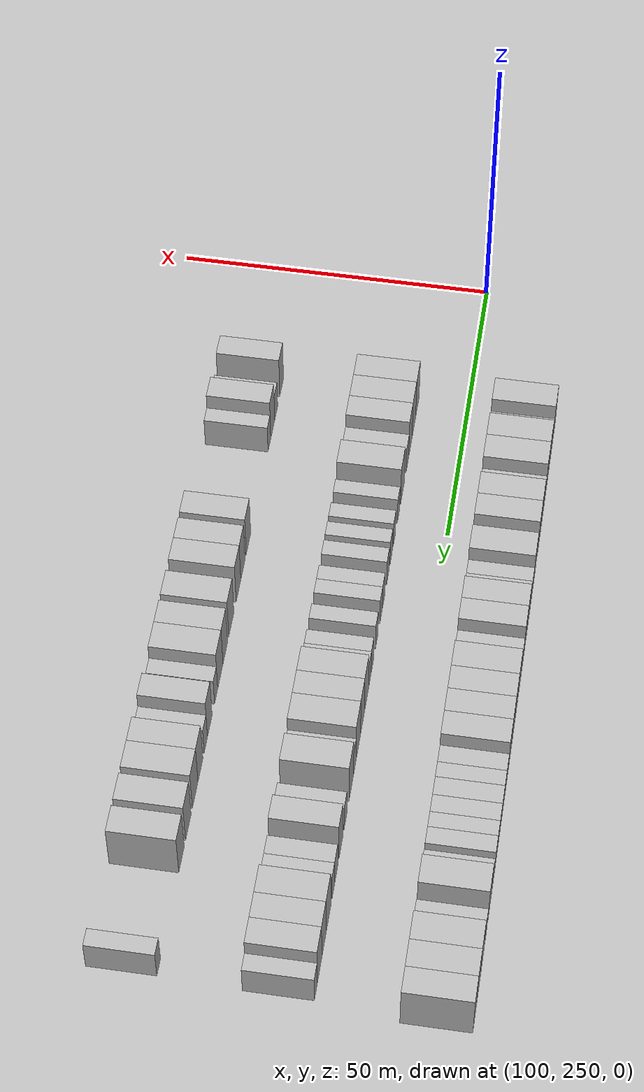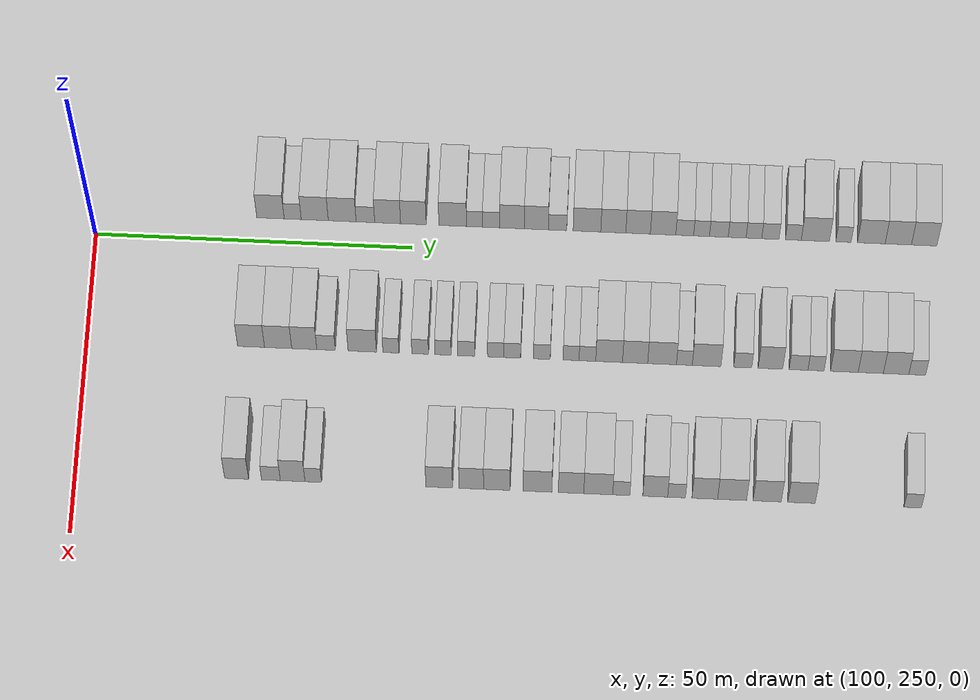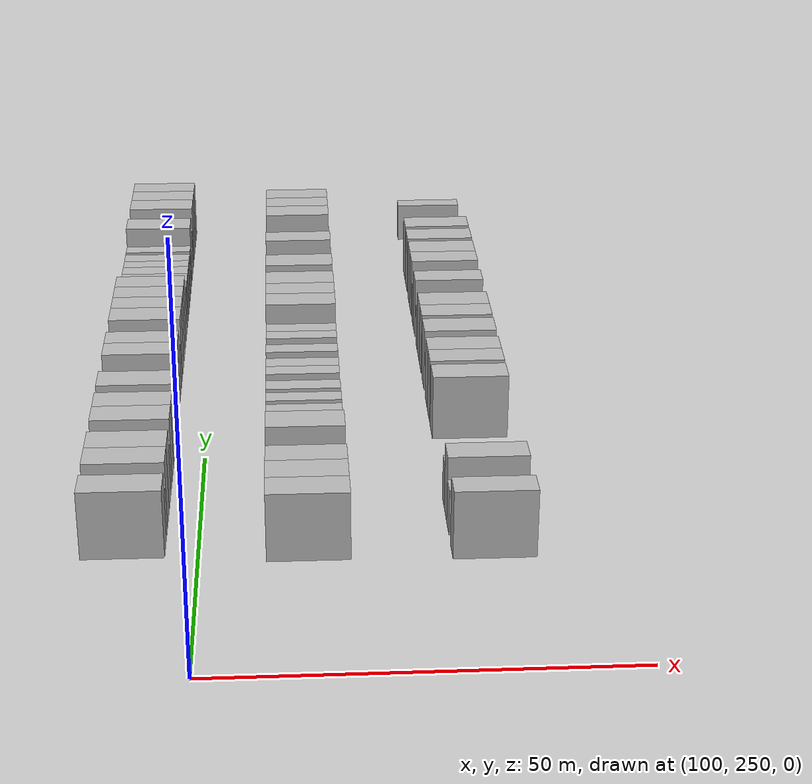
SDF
<sdf version="1.6">
 <world name="default">
  <model name="building_727">
   <static>1</static>
   <pose>91.0000 277.3168 0 0.000000 0.000000 0.000000</pose>
   <link name="link">
    <pose>0 0 4.50 0 0 0</pose>
    <collision name="collision"><geometry><box><size>10.0000 4.3286 9.0000</size></box></geometry></collision>
    <visual name="visual">
     <cast_shadows>0</cast_shadows>
     <geometry><box><size>10.0000 4.3286 9.0000</size></box></geometry>
     <material>
      <script>
       <uri>model://HANNAS_wall/materials/scripts</uri>
       <uri>model://HANNAS_wall/materials/textures</uri>
       <name>vrc/HANNAS_wall</name>
      </script>
     </material>
    </visual>
   </link>
  </model>
  <model name="building_728">
   <static>1</static>
   <pose>91.0000 280.8284 0 0.000000 0.000000 0.000000</pose>
   <link name="link">
    <pose>0 0 3.00 0 0 0</pose>
    <collision name="collision"><geometry><box><size>10.0000 2.6946 6.0000</size></box></geometry></collision>
    <visual name="visual">
     <cast_shadows>0</cast_shadows>
     <geometry><box><size>10.0000 2.6946 6.0000</size></box></geometry>
     <material>
      <script>
       <uri>model://HANNAS_wall/materials/scripts</uri>
       <uri>model://HANNAS_wall/materials/textures</uri>
       <name>vrc/HANNAS_wall</name>
      </script>
     </material>
    </visual>
   </link>
  </model>
  <model name="building_729">
   <static>1</static>
   <pose>91.0000 284.3201 0 0.000000 0.000000 0.000000</pose>
   <link name="link">
    <pose>0 0 4.50 0 0 0</pose>
    <collision name="collision"><geometry><box><size>10.0000 4.2889 9.0000</size></box></geometry></collision>
    <visual name="visual">
     <cast_shadows>0</cast_shadows>
     <geometry><box><size>10.0000 4.2889 9.0000</size></box></geometry>
     <material>
      <script>
       <uri>model://HANNAS_wall/materials/scripts</uri>
       <uri>model://HANNAS_wall/materials/textures</uri>
       <name>vrc/HANNAS_wall</name>
      </script>
     </material>
    </visual>
   </link>
  </model>
  <model name="building_730">
   <static>1</static>
   <pose>91.0000 288.6674 0 0.000000 0.000000 0.000000</pose>
   <link name="link">
    <pose>0 0 4.50 0 0 0</pose>
    <collision name="collision"><geometry><box><size>10.0000 4.4056 9.0000</size></box></geometry></collision>
    <visual name="visual">
     <cast_shadows>0</cast_shadows>
     <geometry><box><size>10.0000 4.4056 9.0000</size></box></geometry>
     <material>
      <script>
       <uri>model://HANNAS_wall/materials/scripts</uri>
       <uri>model://HANNAS_wall/materials/textures</uri>
       <name>vrc/HANNAS_wall</name>
      </script>
     </material>
    </visual>
   </link>
  </model>
  <model name="building_731">
   <static>1</static>
   <pose>91.0000 292.3396 0 0.000000 0.000000 0.000000</pose>
   <link name="link">
    <pose>0 0 3.00 0 0 0</pose>
    <collision name="collision"><geometry><box><size>10.0000 2.9389 6.0000</size></box></geometry></collision>
    <visual name="visual">
     <cast_shadows>0</cast_shadows>
     <geometry><box><size>10.0000 2.9389 6.0000</size></box></geometry>
     <material>
      <script>
       <uri>model://HANNAS_wall/materials/scripts</uri>
       <uri>model://HANNAS_wall/materials/textures</uri>
       <name>vrc/HANNAS_wall</name>
      </script>
     </material>
    </visual>
   </link>
  </model>
  <model name="building_732">
   <static>1</static>
   <pose>91.0000 295.8564 0 0.000000 0.000000 0.000000</pose>
   <link name="link">
    <pose>0 0 4.50 0 0 0</pose>
    <collision name="collision"><geometry><box><size>10.0000 4.0948 9.0000</size></box></geometry></collision>
    <visual name="visual">
     <cast_shadows>0</cast_shadows>
     <geometry><box><size>10.0000 4.0948 9.0000</size></box></geometry>
     <material>
      <script>
       <uri>model://HANNAS_wall/materials/scripts</uri>
       <uri>model://HANNAS_wall/materials/textures</uri>
       <name>vrc/HANNAS_wall</name>
      </script>
     </material>
    </visual>
   </link>
  </model>
  <model name="building_733">
   <static>1</static>
   <pose>91.0000 299.9325 0 0.000000 0.000000 0.000000</pose>
   <link name="link">
    <pose>0 0 4.50 0 0 0</pose>
    <collision name="collision"><geometry><box><size>10.0000 4.0573 9.0000</size></box></geometry></collision>
    <visual name="visual">
     <cast_shadows>0</cast_shadows>
     <geometry><box><size>10.0000 4.0573 9.0000</size></box></geometry>
     <material>
      <script>
       <uri>model://HANNAS_wall/materials/scripts</uri>
       <uri>model://HANNAS_wall/materials/textures</uri>
       <name>vrc/HANNAS_wall</name>
      </script>
     </material>
    </visual>
   </link>
  </model>
  <model name="building_734">
   <static>1</static>
   <pose>91.0000 306.1428 0 0.000000 0.000000 0.000000</pose>
   <link name="link">
    <pose>0 0 4.50 0 0 0</pose>
    <collision name="collision"><geometry><box><size>10.0000 4.3632 9.0000</size></box></geometry></collision>
    <visual name="visual">
     <cast_shadows>0</cast_shadows>
     <geometry><box><size>10.0000 4.3632 9.0000</size></box></geometry>
     <material>
      <script>
       <uri>model://HANNAS_wall/materials/scripts</uri>
       <uri>model://HANNAS_wall/materials/textures</uri>
       <name>vrc/HANNAS_wall</name>
      </script>
     </material>
    </visual>
   </link>
  </model>
  <model name="building_735">
   <static>1</static>
   <pose>91.0000 309.5792 0 0.000000 0.000000 0.000000</pose>
   <link name="link">
    <pose>0 0 3.00 0 0 0</pose>
    <collision name="collision"><geometry><box><size>10.0000 2.5097 6.0000</size></box></geometry></collision>
    <visual name="visual">
     <cast_shadows>0</cast_shadows>
     <geometry><box><size>10.0000 2.5097 6.0000</size></box></geometry>
     <material>
      <script>
       <uri>model://HANNAS_wall/materials/scripts</uri>
       <uri>model://HANNAS_wall/materials/textures</uri>
       <name>vrc/HANNAS_wall</name>
      </script>
     </material>
    </visual>
   </link>
  </model>
  <model name="building_736">
   <static>1</static>
   <pose>91.0000 312.1799 0 0.000000 0.000000 0.000000</pose>
   <link name="link">
    <pose>0 0 3.00 0 0 0</pose>
    <collision name="collision"><geometry><box><size>10.0000 2.6917 6.0000</size></box></geometry></collision>
    <visual name="visual">
     <cast_shadows>0</cast_shadows>
     <geometry><box><size>10.0000 2.6917 6.0000</size></box></geometry>
     <material>
      <script>
       <uri>model://HANNAS_wall/materials/scripts</uri>
       <uri>model://HANNAS_wall/materials/textures</uri>
       <name>vrc/HANNAS_wall</name>
      </script>
     </material>
    </visual>
   </link>
  </model>
  <model name="building_737">
   <static>1</static>
   <pose>91.0000 315.4872 0 0.000000 0.000000 0.000000</pose>
   <link name="link">
    <pose>0 0 4.50 0 0 0</pose>
    <collision name="collision"><geometry><box><size>10.0000 3.9231 9.0000</size></box></geometry></collision>
    <visual name="visual">
     <cast_shadows>0</cast_shadows>
     <geometry><box><size>10.0000 3.9231 9.0000</size></box></geometry>
     <material>
      <script>
       <uri>model://HANNAS_wall/materials/scripts</uri>
       <uri>model://HANNAS_wall/materials/textures</uri>
       <name>vrc/HANNAS_wall</name>
      </script>
     </material>
    </visual>
   </link>
  </model>
  <model name="building_738">
   <static>1</static>
   <pose>91.0000 319.3515 0 0.000000 0.000000 0.000000</pose>
   <link name="link">
    <pose>0 0 4.50 0 0 0</pose>
    <collision name="collision"><geometry><box><size>10.0000 3.8055 9.0000</size></box></geometry></collision>
    <visual name="visual">
     <cast_shadows>0</cast_shadows>
     <geometry><box><size>10.0000 3.8055 9.0000</size></box></geometry>
     <material>
      <script>
       <uri>model://HANNAS_wall/materials/scripts</uri>
       <uri>model://HANNAS_wall/materials/textures</uri>
       <name>vrc/HANNAS_wall</name>
      </script>
     </material>
    </visual>
   </link>
  </model>
  <model name="building_739">
   <static>1</static>
   <pose>91.0000 322.7089 0 0.000000 0.000000 0.000000</pose>
   <link name="link">
    <pose>0 0 3.00 0 0 0</pose>
    <collision name="collision"><geometry><box><size>10.0000 2.9093 6.0000</size></box></geometry></collision>
    <visual name="visual">
     <cast_shadows>0</cast_shadows>
     <geometry><box><size>10.0000 2.9093 6.0000</size></box></geometry>
     <material>
      <script>
       <uri>model://HANNAS_wall/materials/scripts</uri>
       <uri>model://HANNAS_wall/materials/textures</uri>
       <name>vrc/HANNAS_wall</name>
      </script>
     </material>
    </visual>
   </link>
  </model>
  <model name="building_740">
   <static>1</static>
   <pose>91.0000 327.3468 0 0.000000 0.000000 0.000000</pose>
   <link name="link">
    <pose>0 0 4.50 0 0 0</pose>
    <collision name="collision"><geometry><box><size>10.0000 4.3665 9.0000</size></box></geometry></collision>
    <visual name="visual">
     <cast_shadows>0</cast_shadows>
     <geometry><box><size>10.0000 4.3665 9.0000</size></box></geometry>
     <material>
      <script>
       <uri>model://HANNAS_wall/materials/scripts</uri>
       <uri>model://HANNAS_wall/materials/textures</uri>
       <name>vrc/HANNAS_wall</name>
      </script>
     </material>
    </visual>
   </link>
  </model>
  <model name="building_741">
   <static>1</static>
   <pose>91.0000 331.5077 0 0.000000 0.000000 0.000000</pose>
   <link name="link">
    <pose>0 0 4.50 0 0 0</pose>
    <collision name="collision"><geometry><box><size>10.0000 3.9551 9.0000</size></box></geometry></collision>
    <visual name="visual">
     <cast_shadows>0</cast_shadows>
     <geometry><box><size>10.0000 3.9551 9.0000</size></box></geometry>
     <material>
      <script>
       <uri>model://HANNAS_wall/materials/scripts</uri>
       <uri>model://HANNAS_wall/materials/textures</uri>
       <name>vrc/HANNAS_wall</name>
      </script>
     </material>
    </visual>
   </link>
  </model>
  <model name="building_742">
   <static>1</static>
   <pose>91.0000 335.4230 0 0.000000 0.000000 0.000000</pose>
   <link name="link">
    <pose>0 0 4.50 0 0 0</pose>
    <collision name="collision"><geometry><box><size>10.0000 3.8756 9.0000</size></box></geometry></collision>
    <visual name="visual">
     <cast_shadows>0</cast_shadows>
     <geometry><box><size>10.0000 3.8756 9.0000</size></box></geometry>
     <material>
      <script>
       <uri>model://HANNAS_wall/materials/scripts</uri>
       <uri>model://HANNAS_wall/materials/textures</uri>
       <name>vrc/HANNAS_wall</name>
      </script>
     </material>
    </visual>
   </link>
  </model>
  <model name="building_743">
   <static>1</static>
   <pose>91.0000 339.3676 0 0.000000 0.000000 0.000000</pose>
   <link name="link">
    <pose>0 0 4.50 0 0 0</pose>
    <collision name="collision"><geometry><box><size>10.0000 4.0134 9.0000</size></box></geometry></collision>
    <visual name="visual">
     <cast_shadows>0</cast_shadows>
     <geometry><box><size>10.0000 4.0134 9.0000</size></box></geometry>
     <material>
      <script>
       <uri>model://HANNAS_wall/materials/scripts</uri>
       <uri>model://HANNAS_wall/materials/textures</uri>
       <name>vrc/HANNAS_wall</name>
      </script>
     </material>
    </visual>
   </link>
  </model>
  <model name="building_744">
   <static>1</static>
   <pose>91.0000 342.7817 0 0.000000 0.000000 0.000000</pose>
   <link name="link">
    <pose>0 0 3.00 0 0 0</pose>
    <collision name="collision"><geometry><box><size>10.0000 2.8149 6.0000</size></box></geometry></collision>
    <visual name="visual">
     <cast_shadows>0</cast_shadows>
     <geometry><box><size>10.0000 2.8149 6.0000</size></box></geometry>
     <material>
      <script>
       <uri>model://HANNAS_wall/materials/scripts</uri>
       <uri>model://HANNAS_wall/materials/textures</uri>
       <name>vrc/HANNAS_wall</name>
      </script>
     </material>
    </visual>
   </link>
  </model>
  <model name="building_745">
   <static>1</static>
   <pose>91.0000 345.4374 0 0.000000 0.000000 0.000000</pose>
   <link name="link">
    <pose>0 0 3.00 0 0 0</pose>
    <collision name="collision"><geometry><box><size>10.0000 2.4965 6.0000</size></box></geometry></collision>
    <visual name="visual">
     <cast_shadows>0</cast_shadows>
     <geometry><box><size>10.0000 2.4965 6.0000</size></box></geometry>
     <material>
      <script>
       <uri>model://HANNAS_wall/materials/scripts</uri>
       <uri>model://HANNAS_wall/materials/textures</uri>
       <name>vrc/HANNAS_wall</name>
      </script>
     </material>
    </visual>
   </link>
  </model>
  <model name="building_746">
   <static>1</static>
   <pose>91.0000 348.1692 0 0.000000 0.000000 0.000000</pose>
   <link name="link">
    <pose>0 0 3.00 0 0 0</pose>
    <collision name="collision"><geometry><box><size>10.0000 2.9671 6.0000</size></box></geometry></collision>
    <visual name="visual">
     <cast_shadows>0</cast_shadows>
     <geometry><box><size>10.0000 2.9671 6.0000</size></box></geometry>
     <material>
      <script>
       <uri>model://HANNAS_wall/materials/scripts</uri>
       <uri>model://HANNAS_wall/materials/textures</uri>
       <name>vrc/HANNAS_wall</name>
      </script>
     </material>
    </visual>
   </link>
  </model>
  <model name="building_747">
   <static>1</static>
   <pose>91.0000 351.0616 0 0.000000 0.000000 0.000000</pose>
   <link name="link">
    <pose>0 0 3.00 0 0 0</pose>
    <collision name="collision"><geometry><box><size>10.0000 2.8179 6.0000</size></box></geometry></collision>
    <visual name="visual">
     <cast_shadows>0</cast_shadows>
     <geometry><box><size>10.0000 2.8179 6.0000</size></box></geometry>
     <material>
      <script>
       <uri>model://HANNAS_wall/materials/scripts</uri>
       <uri>model://HANNAS_wall/materials/textures</uri>
       <name>vrc/HANNAS_wall</name>
      </script>
     </material>
    </visual>
   </link>
  </model>
  <model name="building_748">
   <static>1</static>
   <pose>91.0000 353.7015 0 0.000000 0.000000 0.000000</pose>
   <link name="link">
    <pose>0 0 3.00 0 0 0</pose>
    <collision name="collision"><geometry><box><size>10.0000 2.4619 6.0000</size></box></geometry></collision>
    <visual name="visual">
     <cast_shadows>0</cast_shadows>
     <geometry><box><size>10.0000 2.4619 6.0000</size></box></geometry>
     <material>
      <script>
       <uri>model://HANNAS_wall/materials/scripts</uri>
       <uri>model://HANNAS_wall/materials/textures</uri>
       <name>vrc/HANNAS_wall</name>
      </script>
     </material>
    </visual>
   </link>
  </model>
  <model name="building_749">
   <static>1</static>
   <pose>91.0000 356.2937 0 0.000000 0.000000 0.000000</pose>
   <link name="link">
    <pose>0 0 3.00 0 0 0</pose>
    <collision name="collision"><geometry><box><size>10.0000 2.7226 6.0000</size></box></geometry></collision>
    <visual name="visual">
     <cast_shadows>0</cast_shadows>
     <geometry><box><size>10.0000 2.7226 6.0000</size></box></geometry>
     <material>
      <script>
       <uri>model://HANNAS_wall/materials/scripts</uri>
       <uri>model://HANNAS_wall/materials/textures</uri>
       <name>vrc/HANNAS_wall</name>
      </script>
     </material>
    </visual>
   </link>
  </model>
  <model name="building_750">
   <static>1</static>
   <pose>91.0000 359.9078 0 0.000000 0.000000 0.000000</pose>
   <link name="link">
    <pose>0 0 3.00 0 0 0</pose>
    <collision name="collision"><geometry><box><size>10.0000 2.5056 6.0000</size></box></geometry></collision>
    <visual name="visual">
     <cast_shadows>0</cast_shadows>
     <geometry><box><size>10.0000 2.5056 6.0000</size></box></geometry>
     <material>
      <script>
       <uri>model://HANNAS_wall/materials/scripts</uri>
       <uri>model://HANNAS_wall/materials/textures</uri>
       <name>vrc/HANNAS_wall</name>
      </script>
     </material>
    </visual>
   </link>
  </model>
  <model name="building_751">
   <static>1</static>
   <pose>91.0000 363.3858 0 0.000000 0.000000 0.000000</pose>
   <link name="link">
    <pose>0 0 4.50 0 0 0</pose>
    <collision name="collision"><geometry><box><size>10.0000 4.4504 9.0000</size></box></geometry></collision>
    <visual name="visual">
     <cast_shadows>0</cast_shadows>
     <geometry><box><size>10.0000 4.4504 9.0000</size></box></geometry>
     <material>
      <script>
       <uri>model://HANNAS_wall/materials/scripts</uri>
       <uri>model://HANNAS_wall/materials/textures</uri>
       <name>vrc/HANNAS_wall</name>
      </script>
     </material>
    </visual>
   </link>
  </model>
  <model name="building_752">
   <static>1</static>
   <pose>91.0000 367.8194 0 0.000000 0.000000 0.000000</pose>
   <link name="link">
    <pose>0 0 3.00 0 0 0</pose>
    <collision name="collision"><geometry><box><size>10.0000 2.4169 6.0000</size></box></geometry></collision>
    <visual name="visual">
     <cast_shadows>0</cast_shadows>
     <geometry><box><size>10.0000 2.4169 6.0000</size></box></geometry>
     <material>
      <script>
       <uri>model://HANNAS_wall/materials/scripts</uri>
       <uri>model://HANNAS_wall/materials/textures</uri>
       <name>vrc/HANNAS_wall</name>
      </script>
     </material>
    </visual>
   </link>
  </model>
  <model name="building_753">
   <static>1</static>
   <pose>91.0000 372.2094 0 0.000000 0.000000 0.000000</pose>
   <link name="link">
    <pose>0 0 4.50 0 0 0</pose>
    <collision name="collision"><geometry><box><size>10.0000 4.3629 9.0000</size></box></geometry></collision>
    <visual name="visual">
     <cast_shadows>0</cast_shadows>
     <geometry><box><size>10.0000 4.3629 9.0000</size></box></geometry>
     <material>
      <script>
       <uri>model://HANNAS_wall/materials/scripts</uri>
       <uri>model://HANNAS_wall/materials/textures</uri>
       <name>vrc/HANNAS_wall</name>
      </script>
     </material>
    </visual>
   </link>
  </model>
  <model name="building_754">
   <static>1</static>
   <pose>91.0000 376.4621 0 0.000000 0.000000 0.000000</pose>
   <link name="link">
    <pose>0 0 4.50 0 0 0</pose>
    <collision name="collision"><geometry><box><size>10.0000 4.1426 9.0000</size></box></geometry></collision>
    <visual name="visual">
     <cast_shadows>0</cast_shadows>
     <geometry><box><size>10.0000 4.1426 9.0000</size></box></geometry>
     <material>
      <script>
       <uri>model://HANNAS_wall/materials/scripts</uri>
       <uri>model://HANNAS_wall/materials/textures</uri>
       <name>vrc/HANNAS_wall</name>
      </script>
     </material>
    </visual>
   </link>
  </model>
  <model name="building_755">
   <static>1</static>
   <pose>91.0000 380.5366 0 0.000000 0.000000 0.000000</pose>
   <link name="link">
    <pose>0 0 4.50 0 0 0</pose>
    <collision name="collision"><geometry><box><size>10.0000 4.0064 9.0000</size></box></geometry></collision>
    <visual name="visual">
     <cast_shadows>0</cast_shadows>
     <geometry><box><size>10.0000 4.0064 9.0000</size></box></geometry>
     <material>
      <script>
       <uri>model://HANNAS_wall/materials/scripts</uri>
       <uri>model://HANNAS_wall/materials/textures</uri>
       <name>vrc/HANNAS_wall</name>
      </script>
     </material>
    </visual>
   </link>
  </model>
  <model name="building_912">
   <static>1</static>
   <pose>113.0000 275.7242 0 0.000000 0.000000 0.000000</pose>
   <link name="link">
    <pose>0 0 4.50 0 0 0</pose>
    <collision name="collision"><geometry><box><size>10.0000 4.2064 9.0000</size></box></geometry></collision>
    <visual name="visual">
     <cast_shadows>0</cast_shadows>
     <geometry><box><size>10.0000 4.2064 9.0000</size></box></geometry>
     <material>
      <script>
       <uri>model://HANNAS_wall/materials/scripts</uri>
       <uri>model://HANNAS_wall/materials/textures</uri>
       <name>vrc/HANNAS_wall</name>
      </script>
     </material>
    </visual>
   </link>
  </model>
  <model name="building_913">
   <static>1</static>
   <pose>113.0000 279.9546 0 0.000000 0.000000 0.000000</pose>
   <link name="link">
    <pose>0 0 4.50 0 0 0</pose>
    <collision name="collision"><geometry><box><size>10.0000 4.2545 9.0000</size></box></geometry></collision>
    <visual name="visual">
     <cast_shadows>0</cast_shadows>
     <geometry><box><size>10.0000 4.2545 9.0000</size></box></geometry>
     <material>
      <script>
       <uri>model://HANNAS_wall/materials/scripts</uri>
       <uri>model://HANNAS_wall/materials/textures</uri>
       <name>vrc/HANNAS_wall</name>
      </script>
     </material>
    </visual>
   </link>
  </model>
  <model name="building_914">
   <static>1</static>
   <pose>113.0000 284.0425 0 0.000000 0.000000 0.000000</pose>
   <link name="link">
    <pose>0 0 4.50 0 0 0</pose>
    <collision name="collision"><geometry><box><size>10.0000 3.9213 9.0000</size></box></geometry></collision>
    <visual name="visual">
     <cast_shadows>0</cast_shadows>
     <geometry><box><size>10.0000 3.9213 9.0000</size></box></geometry>
     <material>
      <script>
       <uri>model://HANNAS_wall/materials/scripts</uri>
       <uri>model://HANNAS_wall/materials/textures</uri>
       <name>vrc/HANNAS_wall</name>
      </script>
     </material>
    </visual>
   </link>
  </model>
  <model name="building_915">
   <static>1</static>
   <pose>113.0000 287.4534 0 0.000000 0.000000 0.000000</pose>
   <link name="link">
    <pose>0 0 3.00 0 0 0</pose>
    <collision name="collision"><geometry><box><size>10.0000 2.9004 6.0000</size></box></geometry></collision>
    <visual name="visual">
     <cast_shadows>0</cast_shadows>
     <geometry><box><size>10.0000 2.9004 6.0000</size></box></geometry>
     <material>
      <script>
       <uri>model://HANNAS_wall/materials/scripts</uri>
       <uri>model://HANNAS_wall/materials/textures</uri>
       <name>vrc/HANNAS_wall</name>
      </script>
     </material>
    </visual>
   </link>
  </model>
  <model name="building_916">
   <static>1</static>
   <pose>113.0000 293.1242 0 0.000000 0.000000 0.000000</pose>
   <link name="link">
    <pose>0 0 4.50 0 0 0</pose>
    <collision name="collision"><geometry><box><size>10.0000 4.4412 9.0000</size></box></geometry></collision>
    <visual name="visual">
     <cast_shadows>0</cast_shadows>
     <geometry><box><size>10.0000 4.4412 9.0000</size></box></geometry>
     <material>
      <script>
       <uri>model://HANNAS_wall/materials/scripts</uri>
       <uri>model://HANNAS_wall/materials/textures</uri>
       <name>vrc/HANNAS_wall</name>
      </script>
     </material>
    </visual>
   </link>
  </model>
  <model name="building_917">
   <static>1</static>
   <pose>113.0000 297.6085 0 0.000000 0.000000 0.000000</pose>
   <link name="link">
    <pose>0 0 3.00 0 0 0</pose>
    <collision name="collision"><geometry><box><size>10.0000 2.5274 6.0000</size></box></geometry></collision>
    <visual name="visual">
     <cast_shadows>0</cast_shadows>
     <geometry><box><size>10.0000 2.5274 6.0000</size></box></geometry>
     <material>
      <script>
       <uri>model://HANNAS_wall/materials/scripts</uri>
       <uri>model://HANNAS_wall/materials/textures</uri>
       <name>vrc/HANNAS_wall</name>
      </script>
     </material>
    </visual>
   </link>
  </model>
  <model name="building_918">
   <static>1</static>
   <pose>113.0000 302.1730 0 0.000000 0.000000 0.000000</pose>
   <link name="link">
    <pose>0 0 3.00 0 0 0</pose>
    <collision name="collision"><geometry><box><size>10.0000 2.6018 6.0000</size></box></geometry></collision>
    <visual name="visual">
     <cast_shadows>0</cast_shadows>
     <geometry><box><size>10.0000 2.6018 6.0000</size></box></geometry>
     <material>
      <script>
       <uri>model://HANNAS_wall/materials/scripts</uri>
       <uri>model://HANNAS_wall/materials/textures</uri>
       <name>vrc/HANNAS_wall</name>
      </script>
     </material>
    </visual>
   </link>
  </model>
  <model name="building_919">
   <static>1</static>
   <pose>113.0000 305.7396 0 0.000000 0.000000 0.000000</pose>
   <link name="link">
    <pose>0 0 3.00 0 0 0</pose>
    <collision name="collision"><geometry><box><size>10.0000 2.5313 6.0000</size></box></geometry></collision>
    <visual name="visual">
     <cast_shadows>0</cast_shadows>
     <geometry><box><size>10.0000 2.5313 6.0000</size></box></geometry>
     <material>
      <script>
       <uri>model://HANNAS_wall/materials/scripts</uri>
       <uri>model://HANNAS_wall/materials/textures</uri>
       <name>vrc/HANNAS_wall</name>
      </script>
     </material>
    </visual>
   </link>
  </model>
  <model name="building_920">
   <static>1</static>
   <pose>113.0000 309.3467 0 0.000000 0.000000 0.000000</pose>
   <link name="link">
    <pose>0 0 3.00 0 0 0</pose>
    <collision name="collision"><geometry><box><size>10.0000 2.6828 6.0000</size></box></geometry></collision>
    <visual name="visual">
     <cast_shadows>0</cast_shadows>
     <geometry><box><size>10.0000 2.6828 6.0000</size></box></geometry>
     <material>
      <script>
       <uri>model://HANNAS_wall/materials/scripts</uri>
       <uri>model://HANNAS_wall/materials/textures</uri>
       <name>vrc/HANNAS_wall</name>
      </script>
     </material>
    </visual>
   </link>
  </model>
  <model name="building_921">
   <static>1</static>
   <pose>113.0000 313.9648 0 0.000000 0.000000 0.000000</pose>
   <link name="link">
    <pose>0 0 3.00 0 0 0</pose>
    <collision name="collision"><geometry><box><size>10.0000 2.5535 6.0000</size></box></geometry></collision>
    <visual name="visual">
     <cast_shadows>0</cast_shadows>
     <geometry><box><size>10.0000 2.5535 6.0000</size></box></geometry>
     <material>
      <script>
       <uri>model://HANNAS_wall/materials/scripts</uri>
       <uri>model://HANNAS_wall/materials/textures</uri>
       <name>vrc/HANNAS_wall</name>
      </script>
     </material>
    </visual>
   </link>
  </model>
  <model name="building_922">
   <static>1</static>
   <pose>113.0000 316.5487 0 0.000000 0.000000 0.000000</pose>
   <link name="link">
    <pose>0 0 3.00 0 0 0</pose>
    <collision name="collision"><geometry><box><size>10.0000 2.6142 6.0000</size></box></geometry></collision>
    <visual name="visual">
     <cast_shadows>0</cast_shadows>
     <geometry><box><size>10.0000 2.6142 6.0000</size></box></geometry>
     <material>
      <script>
       <uri>model://HANNAS_wall/materials/scripts</uri>
       <uri>model://HANNAS_wall/materials/textures</uri>
       <name>vrc/HANNAS_wall</name>
      </script>
     </material>
    </visual>
   </link>
  </model>
  <model name="building_923">
   <static>1</static>
   <pose>113.0000 321.1676 0 0.000000 0.000000 0.000000</pose>
   <link name="link">
    <pose>0 0 3.00 0 0 0</pose>
    <collision name="collision"><geometry><box><size>10.0000 2.6237 6.0000</size></box></geometry></collision>
    <visual name="visual">
     <cast_shadows>0</cast_shadows>
     <geometry><box><size>10.0000 2.6237 6.0000</size></box></geometry>
     <material>
      <script>
       <uri>model://HANNAS_wall/materials/scripts</uri>
       <uri>model://HANNAS_wall/materials/textures</uri>
       <name>vrc/HANNAS_wall</name>
      </script>
     </material>
    </visual>
   </link>
  </model>
  <model name="building_924">
   <static>1</static>
   <pose>113.0000 325.7240 0 0.000000 0.000000 0.000000</pose>
   <link name="link">
    <pose>0 0 3.00 0 0 0</pose>
    <collision name="collision"><geometry><box><size>10.0000 2.4892 6.0000</size></box></geometry></collision>
    <visual name="visual">
     <cast_shadows>0</cast_shadows>
     <geometry><box><size>10.0000 2.4892 6.0000</size></box></geometry>
     <material>
      <script>
       <uri>model://HANNAS_wall/materials/scripts</uri>
       <uri>model://HANNAS_wall/materials/textures</uri>
       <name>vrc/HANNAS_wall</name>
      </script>
     </material>
    </visual>
   </link>
  </model>
  <model name="building_925">
   <static>1</static>
   <pose>113.0000 328.2714 0 0.000000 0.000000 0.000000</pose>
   <link name="link">
    <pose>0 0 3.00 0 0 0</pose>
    <collision name="collision"><geometry><box><size>10.0000 2.6057 6.0000</size></box></geometry></collision>
    <visual name="visual">
     <cast_shadows>0</cast_shadows>
     <geometry><box><size>10.0000 2.6057 6.0000</size></box></geometry>
     <material>
      <script>
       <uri>model://HANNAS_wall/materials/scripts</uri>
       <uri>model://HANNAS_wall/materials/textures</uri>
       <name>vrc/HANNAS_wall</name>
      </script>
     </material>
    </visual>
   </link>
  </model>
  <model name="building_926">
   <static>1</static>
   <pose>113.0000 331.6617 0 0.000000 0.000000 0.000000</pose>
   <link name="link">
    <pose>0 0 4.50 0 0 0</pose>
    <collision name="collision"><geometry><box><size>10.0000 4.1747 9.0000</size></box></geometry></collision>
    <visual name="visual">
     <cast_shadows>0</cast_shadows>
     <geometry><box><size>10.0000 4.1747 9.0000</size></box></geometry>
     <material>
      <script>
       <uri>model://HANNAS_wall/materials/scripts</uri>
       <uri>model://HANNAS_wall/materials/textures</uri>
       <name>vrc/HANNAS_wall</name>
      </script>
     </material>
    </visual>
   </link>
  </model>
  <model name="building_927">
   <static>1</static>
   <pose>113.0000 335.7108 0 0.000000 0.000000 0.000000</pose>
   <link name="link">
    <pose>0 0 4.50 0 0 0</pose>
    <collision name="collision"><geometry><box><size>10.0000 3.9236 9.0000</size></box></geometry></collision>
    <visual name="visual">
     <cast_shadows>0</cast_shadows>
     <geometry><box><size>10.0000 3.9236 9.0000</size></box></geometry>
     <material>
      <script>
       <uri>model://HANNAS_wall/materials/scripts</uri>
       <uri>model://HANNAS_wall/materials/textures</uri>
       <name>vrc/HANNAS_wall</name>
      </script>
     </material>
    </visual>
   </link>
  </model>
  <model name="building_928">
   <static>1</static>
   <pose>113.0000 339.9134 0 0.000000 0.000000 0.000000</pose>
   <link name="link">
    <pose>0 0 4.50 0 0 0</pose>
    <collision name="collision"><geometry><box><size>10.0000 4.4816 9.0000</size></box></geometry></collision>
    <visual name="visual">
     <cast_shadows>0</cast_shadows>
     <geometry><box><size>10.0000 4.4816 9.0000</size></box></geometry>
     <material>
      <script>
       <uri>model://HANNAS_wall/materials/scripts</uri>
       <uri>model://HANNAS_wall/materials/textures</uri>
       <name>vrc/HANNAS_wall</name>
      </script>
     </material>
    </visual>
   </link>
  </model>
  <model name="building_929">
   <static>1</static>
   <pose>113.0000 343.3883 0 0.000000 0.000000 0.000000</pose>
   <link name="link">
    <pose>0 0 3.00 0 0 0</pose>
    <collision name="collision"><geometry><box><size>10.0000 2.4681 6.0000</size></box></geometry></collision>
    <visual name="visual">
     <cast_shadows>0</cast_shadows>
     <geometry><box><size>10.0000 2.4681 6.0000</size></box></geometry>
     <material>
      <script>
       <uri>model://HANNAS_wall/materials/scripts</uri>
       <uri>model://HANNAS_wall/materials/textures</uri>
       <name>vrc/HANNAS_wall</name>
      </script>
     </material>
    </visual>
   </link>
  </model>
  <model name="building_930">
   <static>1</static>
   <pose>113.0000 346.8556 0 0.000000 0.000000 0.000000</pose>
   <link name="link">
    <pose>0 0 4.50 0 0 0</pose>
    <collision name="collision"><geometry><box><size>10.0000 4.4666 9.0000</size></box></geometry></collision>
    <visual name="visual">
     <cast_shadows>0</cast_shadows>
     <geometry><box><size>10.0000 4.4666 9.0000</size></box></geometry>
     <material>
      <script>
       <uri>model://HANNAS_wall/materials/scripts</uri>
       <uri>model://HANNAS_wall/materials/textures</uri>
       <name>vrc/HANNAS_wall</name>
      </script>
     </material>
    </visual>
   </link>
  </model>
  <model name="building_931">
   <static>1</static>
   <pose>113.0000 352.4947 0 0.000000 0.000000 0.000000</pose>
   <link name="link">
    <pose>0 0 3.00 0 0 0</pose>
    <collision name="collision"><geometry><box><size>10.0000 2.8117 6.0000</size></box></geometry></collision>
    <visual name="visual">
     <cast_shadows>0</cast_shadows>
     <geometry><box><size>10.0000 2.8117 6.0000</size></box></geometry>
     <material>
      <script>
       <uri>model://HANNAS_wall/materials/scripts</uri>
       <uri>model://HANNAS_wall/materials/textures</uri>
       <name>vrc/HANNAS_wall</name>
      </script>
     </material>
    </visual>
   </link>
  </model>
  <model name="building_932">
   <static>1</static>
   <pose>113.0000 356.8164 0 0.000000 0.000000 0.000000</pose>
   <link name="link">
    <pose>0 0 4.50 0 0 0</pose>
    <collision name="collision"><geometry><box><size>10.0000 3.8316 9.0000</size></box></geometry></collision>
    <visual name="visual">
     <cast_shadows>0</cast_shadows>
     <geometry><box><size>10.0000 3.8316 9.0000</size></box></geometry>
     <material>
      <script>
       <uri>model://HANNAS_wall/materials/scripts</uri>
       <uri>model://HANNAS_wall/materials/textures</uri>
       <name>vrc/HANNAS_wall</name>
      </script>
     </material>
    </visual>
   </link>
  </model>
  <model name="building_933">
   <static>1</static>
   <pose>113.0000 361.1949 0 0.000000 0.000000 0.000000</pose>
   <link name="link">
    <pose>0 0 3.00 0 0 0</pose>
    <collision name="collision"><geometry><box><size>10.0000 2.9253 6.0000</size></box></geometry></collision>
    <visual name="visual">
     <cast_shadows>0</cast_shadows>
     <geometry><box><size>10.0000 2.9253 6.0000</size></box></geometry>
     <material>
      <script>
       <uri>model://HANNAS_wall/materials/scripts</uri>
       <uri>model://HANNAS_wall/materials/textures</uri>
       <name>vrc/HANNAS_wall</name>
      </script>
     </material>
    </visual>
   </link>
  </model>
  <model name="building_934">
   <static>1</static>
   <pose>113.0000 363.9150 0 0.000000 0.000000 0.000000</pose>
   <link name="link">
    <pose>0 0 3.00 0 0 0</pose>
    <collision name="collision"><geometry><box><size>10.0000 2.5148 6.0000</size></box></geometry></collision>
    <visual name="visual">
     <cast_shadows>0</cast_shadows>
     <geometry><box><size>10.0000 2.5148 6.0000</size></box></geometry>
     <material>
      <script>
       <uri>model://HANNAS_wall/materials/scripts</uri>
       <uri>model://HANNAS_wall/materials/textures</uri>
       <name>vrc/HANNAS_wall</name>
      </script>
     </material>
    </visual>
   </link>
  </model>
  <model name="building_935">
   <static>1</static>
   <pose>113.0000 368.3305 0 0.000000 0.000000 0.000000</pose>
   <link name="link">
    <pose>0 0 4.50 0 0 0</pose>
    <collision name="collision"><geometry><box><size>10.0000 4.3162 9.0000</size></box></geometry></collision>
    <visual name="visual">
     <cast_shadows>0</cast_shadows>
     <geometry><box><size>10.0000 4.3162 9.0000</size></box></geometry>
     <material>
      <script>
       <uri>model://HANNAS_wall/materials/scripts</uri>
       <uri>model://HANNAS_wall/materials/textures</uri>
       <name>vrc/HANNAS_wall</name>
      </script>
     </material>
    </visual>
   </link>
  </model>
  <model name="building_936">
   <static>1</static>
   <pose>113.0000 372.4472 0 0.000000 0.000000 0.000000</pose>
   <link name="link">
    <pose>0 0 4.50 0 0 0</pose>
    <collision name="collision"><geometry><box><size>10.0000 3.9172 9.0000</size></box></geometry></collision>
    <visual name="visual">
     <cast_shadows>0</cast_shadows>
     <geometry><box><size>10.0000 3.9172 9.0000</size></box></geometry>
     <material>
      <script>
       <uri>model://HANNAS_wall/materials/scripts</uri>
       <uri>model://HANNAS_wall/materials/textures</uri>
       <name>vrc/HANNAS_wall</name>
      </script>
     </material>
    </visual>
   </link>
  </model>
  <model name="building_937">
   <static>1</static>
   <pose>113.0000 376.3846 0 0.000000 0.000000 0.000000</pose>
   <link name="link">
    <pose>0 0 4.50 0 0 0</pose>
    <collision name="collision"><geometry><box><size>10.0000 3.9576 9.0000</size></box></geometry></collision>
    <visual name="visual">
     <cast_shadows>0</cast_shadows>
     <geometry><box><size>10.0000 3.9576 9.0000</size></box></geometry>
     <material>
      <script>
       <uri>model://HANNAS_wall/materials/scripts</uri>
       <uri>model://HANNAS_wall/materials/textures</uri>
       <name>vrc/HANNAS_wall</name>
      </script>
     </material>
    </visual>
   </link>
  </model>
  <model name="building_938">
   <static>1</static>
   <pose>113.0000 379.6750 0 0.000000 0.000000 0.000000</pose>
   <link name="link">
    <pose>0 0 3.00 0 0 0</pose>
    <collision name="collision"><geometry><box><size>10.0000 2.6231 6.0000</size></box></geometry></collision>
    <visual name="visual">
     <cast_shadows>0</cast_shadows>
     <geometry><box><size>10.0000 2.6231 6.0000</size></box></geometry>
     <material>
      <script>
       <uri>model://HANNAS_wall/materials/scripts</uri>
       <uri>model://HANNAS_wall/materials/textures</uri>
       <name>vrc/HANNAS_wall</name>
      </script>
     </material>
    </visual>
   </link>
  </model>
  <model name="building_1100">
   <static>1</static>
   <pose>135.0000 274.9774 0 0.000000 0.000000 0.000000</pose>
   <link name="link">
    <pose>0 0 4.50 0 0 0</pose>
    <collision name="collision"><geometry><box><size>10.0000 3.7003 9.0000</size></box></geometry></collision>
    <visual name="visual">
     <cast_shadows>0</cast_shadows>
     <geometry><box><size>10.0000 3.7003 9.0000</size></box></geometry>
     <material>
      <script>
       <uri>model://HANNAS_wall/materials/scripts</uri>
       <uri>model://HANNAS_wall/materials/textures</uri>
       <name>vrc/HANNAS_wall</name>
      </script>
     </material>
    </visual>
   </link>
  </model>
  <model name="building_1101">
   <static>1</static>
   <pose>135.0000 280.2755 0 0.000000 0.000000 0.000000</pose>
   <link name="link">
    <pose>0 0 3.00 0 0 0</pose>
    <collision name="collision"><geometry><box><size>10.0000 2.8961 6.0000</size></box></geometry></collision>
    <visual name="visual">
     <cast_shadows>0</cast_shadows>
     <geometry><box><size>10.0000 2.8961 6.0000</size></box></geometry>
     <material>
      <script>
       <uri>model://HANNAS_wall/materials/scripts</uri>
       <uri>model://HANNAS_wall/materials/textures</uri>
       <name>vrc/HANNAS_wall</name>
      </script>
     </material>
    </visual>
   </link>
  </model>
  <model name="building_1102">
   <static>1</static>
   <pose>135.0000 283.6290 0 0.000000 0.000000 0.000000</pose>
   <link name="link">
    <pose>0 0 4.50 0 0 0</pose>
    <collision name="collision"><geometry><box><size>10.0000 3.8109 9.0000</size></box></geometry></collision>
    <visual name="visual">
     <cast_shadows>0</cast_shadows>
     <geometry><box><size>10.0000 3.8109 9.0000</size></box></geometry>
     <material>
      <script>
       <uri>model://HANNAS_wall/materials/scripts</uri>
       <uri>model://HANNAS_wall/materials/textures</uri>
       <name>vrc/HANNAS_wall</name>
      </script>
     </material>
    </visual>
   </link>
  </model>
  <model name="building_1103">
   <static>1</static>
   <pose>135.0000 286.8205 0 0.000000 0.000000 0.000000</pose>
   <link name="link">
    <pose>0 0 3.00 0 0 0</pose>
    <collision name="collision"><geometry><box><size>10.0000 2.5721 6.0000</size></box></geometry></collision>
    <visual name="visual">
     <cast_shadows>0</cast_shadows>
     <geometry><box><size>10.0000 2.5721 6.0000</size></box></geometry>
     <material>
      <script>
       <uri>model://HANNAS_wall/materials/scripts</uri>
       <uri>model://HANNAS_wall/materials/textures</uri>
       <name>vrc/HANNAS_wall</name>
      </script>
     </material>
    </visual>
   </link>
  </model>
  <model name="building_1104">
   <static>1</static>
   <pose>135.0000 306.2753 0 0.000000 0.000000 0.000000</pose>
   <link name="link">
    <pose>0 0 4.50 0 0 0</pose>
    <collision name="collision"><geometry><box><size>10.0000 4.1125 9.0000</size></box></geometry></collision>
    <visual name="visual">
     <cast_shadows>0</cast_shadows>
     <geometry><box><size>10.0000 4.1125 9.0000</size></box></geometry>
     <material>
      <script>
       <uri>model://HANNAS_wall/materials/scripts</uri>
       <uri>model://HANNAS_wall/materials/textures</uri>
       <name>vrc/HANNAS_wall</name>
      </script>
     </material>
    </visual>
   </link>
  </model>
  <model name="building_1105">
   <static>1</static>
   <pose>135.0000 311.2234 0 0.000000 0.000000 0.000000</pose>
   <link name="link">
    <pose>0 0 4.50 0 0 0</pose>
    <collision name="collision"><geometry><box><size>10.0000 3.7838 9.0000</size></box></geometry></collision>
    <visual name="visual">
     <cast_shadows>0</cast_shadows>
     <geometry><box><size>10.0000 3.7838 9.0000</size></box></geometry>
     <material>
      <script>
       <uri>model://HANNAS_wall/materials/scripts</uri>
       <uri>model://HANNAS_wall/materials/textures</uri>
       <name>vrc/HANNAS_wall</name>
      </script>
     </material>
    </visual>
   </link>
  </model>
  <model name="building_1106">
   <static>1</static>
   <pose>135.0000 315.1630 0 0.000000 0.000000 0.000000</pose>
   <link name="link">
    <pose>0 0 4.50 0 0 0</pose>
    <collision name="collision"><geometry><box><size>10.0000 4.0954 9.0000</size></box></geometry></collision>
    <visual name="visual">
     <cast_shadows>0</cast_shadows>
     <geometry><box><size>10.0000 4.0954 9.0000</size></box></geometry>
     <material>
      <script>
       <uri>model://HANNAS_wall/materials/scripts</uri>
       <uri>model://HANNAS_wall/materials/textures</uri>
       <name>vrc/HANNAS_wall</name>
      </script>
     </material>
    </visual>
   </link>
  </model>
  <model name="building_1107">
   <static>1</static>
   <pose>135.0000 321.4241 0 0.000000 0.000000 0.000000</pose>
   <link name="link">
    <pose>0 0 4.50 0 0 0</pose>
    <collision name="collision"><geometry><box><size>10.0000 4.4269 9.0000</size></box></geometry></collision>
    <visual name="visual">
     <cast_shadows>0</cast_shadows>
     <geometry><box><size>10.0000 4.4269 9.0000</size></box></geometry>
     <material>
      <script>
       <uri>model://HANNAS_wall/materials/scripts</uri>
       <uri>model://HANNAS_wall/materials/textures</uri>
       <name>vrc/HANNAS_wall</name>
      </script>
     </material>
    </visual>
   </link>
  </model>
  <model name="building_1108">
   <static>1</static>
   <pose>135.0000 326.6029 0 0.000000 0.000000 0.000000</pose>
   <link name="link">
    <pose>0 0 4.50 0 0 0</pose>
    <collision name="collision"><geometry><box><size>10.0000 3.9306 9.0000</size></box></geometry></collision>
    <visual name="visual">
     <cast_shadows>0</cast_shadows>
     <geometry><box><size>10.0000 3.9306 9.0000</size></box></geometry>
     <material>
      <script>
       <uri>model://HANNAS_wall/materials/scripts</uri>
       <uri>model://HANNAS_wall/materials/textures</uri>
       <name>vrc/HANNAS_wall</name>
      </script>
     </material>
    </visual>
   </link>
  </model>
  <model name="building_1109">
   <static>1</static>
   <pose>135.0000 330.7966 0 0.000000 0.000000 0.000000</pose>
   <link name="link">
    <pose>0 0 4.50 0 0 0</pose>
    <collision name="collision"><geometry><box><size>10.0000 4.4568 9.0000</size></box></geometry></collision>
    <visual name="visual">
     <cast_shadows>0</cast_shadows>
     <geometry><box><size>10.0000 4.4568 9.0000</size></box></geometry>
     <material>
      <script>
       <uri>model://HANNAS_wall/materials/scripts</uri>
       <uri>model://HANNAS_wall/materials/textures</uri>
       <name>vrc/HANNAS_wall</name>
      </script>
     </material>
    </visual>
   </link>
  </model>
  <model name="building_1110">
   <static>1</static>
   <pose>135.0000 334.3490 0 0.000000 0.000000 0.000000</pose>
   <link name="link">
    <pose>0 0 3.00 0 0 0</pose>
    <collision name="collision"><geometry><box><size>10.0000 2.6480 6.0000</size></box></geometry></collision>
    <visual name="visual">
     <cast_shadows>0</cast_shadows>
     <geometry><box><size>10.0000 2.6480 6.0000</size></box></geometry>
     <material>
      <script>
       <uri>model://HANNAS_wall/materials/scripts</uri>
       <uri>model://HANNAS_wall/materials/textures</uri>
       <name>vrc/HANNAS_wall</name>
      </script>
     </material>
    </visual>
   </link>
  </model>
  <model name="building_1111">
   <static>1</static>
   <pose>135.0000 339.5807 0 0.000000 0.000000 0.000000</pose>
   <link name="link">
    <pose>0 0 4.50 0 0 0</pose>
    <collision name="collision"><geometry><box><size>10.0000 3.8156 9.0000</size></box></geometry></collision>
    <visual name="visual">
     <cast_shadows>0</cast_shadows>
     <geometry><box><size>10.0000 3.8156 9.0000</size></box></geometry>
     <material>
      <script>
       <uri>model://HANNAS_wall/materials/scripts</uri>
       <uri>model://HANNAS_wall/materials/textures</uri>
       <name>vrc/HANNAS_wall</name>
      </script>
     </material>
    </visual>
   </link>
  </model>
  <model name="building_1112">
   <static>1</static>
   <pose>135.0000 342.8622 0 0.000000 0.000000 0.000000</pose>
   <link name="link">
    <pose>0 0 3.00 0 0 0</pose>
    <collision name="collision"><geometry><box><size>10.0000 2.7473 6.0000</size></box></geometry></collision>
    <visual name="visual">
     <cast_shadows>0</cast_shadows>
     <geometry><box><size>10.0000 2.7473 6.0000</size></box></geometry>
     <material>
      <script>
       <uri>model://HANNAS_wall/materials/scripts</uri>
       <uri>model://HANNAS_wall/materials/textures</uri>
       <name>vrc/HANNAS_wall</name>
      </script>
     </material>
    </visual>
   </link>
  </model>
  <model name="building_1113">
   <static>1</static>
   <pose>135.0000 347.2080 0 0.000000 0.000000 0.000000</pose>
   <link name="link">
    <pose>0 0 4.50 0 0 0</pose>
    <collision name="collision"><geometry><box><size>10.0000 3.9443 9.0000</size></box></geometry></collision>
    <visual name="visual">
     <cast_shadows>0</cast_shadows>
     <geometry><box><size>10.0000 3.9443 9.0000</size></box></geometry>
     <material>
      <script>
       <uri>model://HANNAS_wall/materials/scripts</uri>
       <uri>model://HANNAS_wall/materials/textures</uri>
       <name>vrc/HANNAS_wall</name>
      </script>
     </material>
    </visual>
   </link>
  </model>
  <model name="building_1114">
   <static>1</static>
   <pose>135.0000 351.4178 0 0.000000 0.000000 0.000000</pose>
   <link name="link">
    <pose>0 0 4.50 0 0 0</pose>
    <collision name="collision"><geometry><box><size>10.0000 4.4753 9.0000</size></box></geometry></collision>
    <visual name="visual">
     <cast_shadows>0</cast_shadows>
     <geometry><box><size>10.0000 4.4753 9.0000</size></box></geometry>
     <material>
      <script>
       <uri>model://HANNAS_wall/materials/scripts</uri>
       <uri>model://HANNAS_wall/materials/textures</uri>
       <name>vrc/HANNAS_wall</name>
      </script>
     </material>
    </visual>
   </link>
  </model>
  <model name="building_1115">
   <static>1</static>
   <pose>135.0000 356.8259 0 0.000000 0.000000 0.000000</pose>
   <link name="link">
    <pose>0 0 4.50 0 0 0</pose>
    <collision name="collision"><geometry><box><size>10.0000 4.3408 9.0000</size></box></geometry></collision>
    <visual name="visual">
     <cast_shadows>0</cast_shadows>
     <geometry><box><size>10.0000 4.3408 9.0000</size></box></geometry>
     <material>
      <script>
       <uri>model://HANNAS_wall/materials/scripts</uri>
       <uri>model://HANNAS_wall/materials/textures</uri>
       <name>vrc/HANNAS_wall</name>
      </script>
     </material>
    </visual>
   </link>
  </model>
  <model name="building_1116">
   <static>1</static>
   <pose>135.0000 362.1063 0 0.000000 0.000000 0.000000</pose>
   <link name="link">
    <pose>0 0 4.50 0 0 0</pose>
    <collision name="collision"><geometry><box><size>10.0000 4.2200 9.0000</size></box></geometry></collision>
    <visual name="visual">
     <cast_shadows>0</cast_shadows>
     <geometry><box><size>10.0000 4.2200 9.0000</size></box></geometry>
     <material>
      <script>
       <uri>model://HANNAS_wall/materials/scripts</uri>
       <uri>model://HANNAS_wall/materials/textures</uri>
       <name>vrc/HANNAS_wall</name>
      </script>
     </material>
    </visual>
   </link>
  </model>
  <model name="building_1117">
   <static>1</static>
   <pose>135.0000 379.2151 0 0.000000 0.000000 0.000000</pose>
   <link name="link">
    <pose>0 0 3.00 0 0 0</pose>
    <collision name="collision"><geometry><box><size>10.0000 2.6659 6.0000</size></box></geometry></collision>
    <visual name="visual">
     <cast_shadows>0</cast_shadows>
     <geometry><box><size>10.0000 2.6659 6.0000</size></box></geometry>
     <material>
      <script>
       <uri>model://HANNAS_wall/materials/scripts</uri>
       <uri>model://HANNAS_wall/materials/textures</uri>
       <name>vrc/HANNAS_wall</name>
      </script>
     </material>
    </visual>
   </link>
  </model>
 </world>
</sdf>
